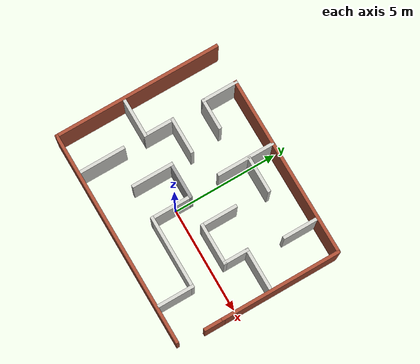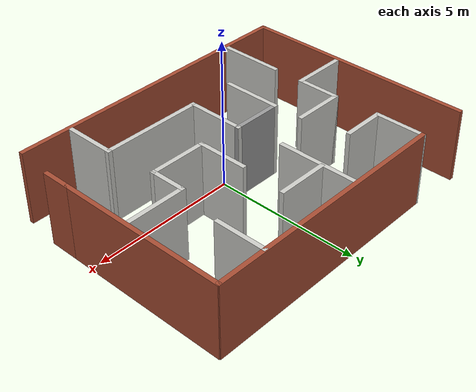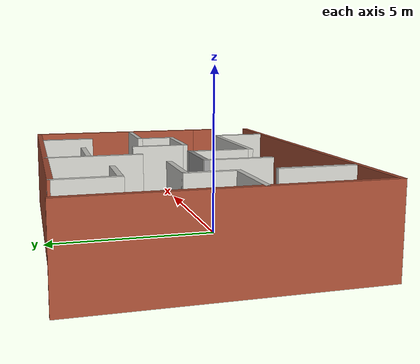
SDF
<?xml version='1.0'?>
<sdf version='1.7'>
  <model name='maze1'>
    <pose>0.125648 1.01609 0 0 -0 0</pose>
    <link name='Wall_10'>
      <collision name='Wall_10_Collision'>
        <geometry>
          <box>
            <size>8.60392 0.15 2.5</size>
          </box>
        </geometry>
        <pose>0 0 1.25 0 -0 0</pose>
      </collision>
      <visual name='Wall_10_Visual'>
        <pose>0 0 1.25 0 -0 0</pose>
        <geometry>
          <box>
            <size>8.60392 0.15 2.5</size>
          </box>
        </geometry>
        <material>
          <script>
            <uri>file://media/materials/scripts/gazebo.material</uri>
            <name>Gazebo/Bricks</name>
          </script>
          <ambient>1 1 1 1</ambient>
        </material>
        <meta>
          <layer>0</layer>
        </meta>
      </visual>
      <pose>0.88793 3.86419 0 0 -0 -3.13769</pose>
    </link>
    <link name='Wall_14'>
      <collision name='Wall_14_Collision'>
        <geometry>
          <box>
            <size>5.75 0.15 2.5</size>
          </box>
        </geometry>
        <pose>0 0 1.25 0 -0 0</pose>
      </collision>
      <visual name='Wall_14_Visual'>
        <pose>0 0 1.25 0 -0 0</pose>
        <geometry>
          <box>
            <size>5.75 0.15 2.5</size>
          </box>
        </geometry>
        <material>
          <script>
            <uri>file://media/materials/scripts/gazebo.material</uri>
            <name>Gazebo/Bricks</name>
          </script>
          <ambient>1 1 1 1</ambient>
        </material>
        <meta>
          <layer>0</layer>
        </meta>
      </visual>
      <pose>5.14103 1.05452 0 0 -0 -1.5708</pose>
    </link>
    <link name='Wall_16'>
      <collision name='Wall_16_Collision'>
        <geometry>
          <box>
            <size>1.75 0.15 2.5</size>
          </box>
        </geometry>
        <pose>0 0 1.25 0 -0 0</pose>
      </collision>
      <visual name='Wall_16_Visual'>
        <pose>0 0 1.25 0 -0 0</pose>
        <geometry>
          <box>
            <size>1.75 0.15 2.5</size>
          </box>
        </geometry>
        <material>
          <script>
            <uri>file://media/materials/scripts/gazebo.material</uri>
            <name>Gazebo/CeilingTiled</name>
          </script>
          <ambient>1 1 1 1</ambient>
        </material>
        <meta>
          <layer>0</layer>
        </meta>
      </visual>
      <pose>-3.339 3.04769 0 0 -0 -1.5708</pose>
    </link>
    <link name='Wall_17'>
      <collision name='Wall_17_Collision'>
        <geometry>
          <box>
            <size>1.5 0.15 2.5</size>
          </box>
        </geometry>
        <pose>0 0 1.25 0 -0 0</pose>
      </collision>
      <visual name='Wall_17_Visual'>
        <pose>0 0 1.25 0 -0 0</pose>
        <geometry>
          <box>
            <size>1.5 0.15 2.5</size>
          </box>
        </geometry>
        <material>
          <script>
            <uri>file://media/materials/scripts/gazebo.material</uri>
            <name>Gazebo/CeilingTiled</name>
          </script>
          <ambient>1 1 1 1</ambient>
        </material>
        <meta>
          <layer>0</layer>
        </meta>
      </visual>
      <pose>-2.664 2.24769 0 0 -0 0</pose>
    </link>
    <link name='Wall_19'>
      <collision name='Wall_19_Collision'>
        <geometry>
          <box>
            <size>2.25 0.15 2.5</size>
          </box>
        </geometry>
        <pose>0 0 1.25 0 -0 0</pose>
      </collision>
      <visual name='Wall_19_Visual'>
        <pose>0 0 1.25 0 -0 0</pose>
        <geometry>
          <box>
            <size>2.25 0.15 2.5</size>
          </box>
        </geometry>
        <material>
          <script>
            <uri>file://media/materials/scripts/gazebo.material</uri>
            <name>Gazebo/CeilingTiled</name>
          </script>
          <ambient>1 1 1 1</ambient>
        </material>
        <meta>
          <layer>0</layer>
        </meta>
      </visual>
      <pose>-3.27785 -2.80066 0 0 -0 1.5708</pose>
    </link>
    <link name='Wall_21'>
      <collision name='Wall_21_Collision'>
        <geometry>
          <box>
            <size>2 0.15 2.5</size>
          </box>
        </geometry>
        <pose>0 0 1.25 0 -0 0</pose>
      </collision>
      <visual name='Wall_21_Visual'>
        <pose>0 0 1.25 0 -0 0</pose>
        <geometry>
          <box>
            <size>2 0.15 2.5</size>
          </box>
        </geometry>
        <material>
          <script>
            <uri>file://media/materials/scripts/gazebo.material</uri>
            <name>Gazebo/CeilingTiled</name>
          </script>
          <ambient>1 1 1 1</ambient>
        </material>
        <meta>
          <layer>0</layer>
        </meta>
      </visual>
      <pose>-4.21089 -0.657958 0 0 -0 0</pose>
    </link>
    <link name='Wall_22'>
      <collision name='Wall_22_Collision'>
        <geometry>
          <box>
            <size>1.5 0.15 2.5</size>
          </box>
        </geometry>
        <pose>0 0 1.25 0 -0 0</pose>
      </collision>
      <visual name='Wall_22_Visual'>
        <pose>0 0 1.25 0 -0 0</pose>
        <geometry>
          <box>
            <size>1.5 0.15 2.5</size>
          </box>
        </geometry>
        <material>
          <script>
            <uri>file://media/materials/scripts/gazebo.material</uri>
            <name>Gazebo/CeilingTiled</name>
          </script>
          <ambient>1 1 1 1</ambient>
        </material>
        <meta>
          <layer>0</layer>
        </meta>
      </visual>
      <pose>-3.28589 0.017042 0 0 -0 1.5708</pose>
    </link>
    <link name='Wall_23'>
      <collision name='Wall_23_Collision'>
        <geometry>
          <box>
            <size>1.75 0.15 2.5</size>
          </box>
        </geometry>
        <pose>0 0 1.25 0 -0 0</pose>
      </collision>
      <visual name='Wall_23_Visual'>
        <pose>0 0 1.25 0 -0 0</pose>
        <geometry>
          <box>
            <size>1.75 0.15 2.5</size>
          </box>
        </geometry>
        <material>
          <script>
            <uri>file://media/materials/scripts/gazebo.material</uri>
            <name>Gazebo/CeilingTiled</name>
          </script>
          <ambient>1 1 1 1</ambient>
        </material>
        <meta>
          <layer>0</layer>
        </meta>
      </visual>
      <pose>-2.48589 0.692042 0 0 -0 0</pose>
    </link>
    <link name='Wall_25'>
      <collision name='Wall_25_Collision'>
        <geometry>
          <box>
            <size>1.75 0.15 2.5</size>
          </box>
        </geometry>
        <pose>0 0 1.25 0 -0 0</pose>
      </collision>
      <visual name='Wall_25_Visual'>
        <pose>0 0 1.25 0 -0 0</pose>
        <geometry>
          <box>
            <size>1.75 0.15 2.5</size>
          </box>
        </geometry>
        <material>
          <script>
            <uri>file://media/materials/scripts/gazebo.material</uri>
            <name>Gazebo/CeilingTiled</name>
          </script>
          <ambient>1 1 1 1</ambient>
        </material>
        <meta>
          <layer>0</layer>
        </meta>
      </visual>
      <pose>3.31692 -2.97215 0 0 -0 1.5708</pose>
    </link>
    <link name='Wall_26'>
      <collision name='Wall_26_Collision'>
        <geometry>
          <box>
            <size>3.5 0.15 2.5</size>
          </box>
        </geometry>
        <pose>0 0 1.25 0 -0 0</pose>
      </collision>
      <visual name='Wall_26_Visual'>
        <pose>0 0 1.25 0 -0 0</pose>
        <geometry>
          <box>
            <size>3.5 0.15 2.5</size>
          </box>
        </geometry>
        <material>
          <script>
            <uri>file://media/materials/scripts/gazebo.material</uri>
            <name>Gazebo/CeilingTiled</name>
          </script>
          <ambient>1 1 1 1</ambient>
        </material>
        <meta>
          <layer>0</layer>
        </meta>
      </visual>
      <pose>1.64192 -2.17215 0 0 -0 3.14159</pose>
    </link>
    <link name='Wall_27'>
      <collision name='Wall_27_Collision'>
        <geometry>
          <box>
            <size>2 0.15 2.5</size>
          </box>
        </geometry>
        <pose>0 0 1.25 0 -0 0</pose>
      </collision>
      <visual name='Wall_27_Visual'>
        <pose>0 0 1.25 0 -0 0</pose>
        <geometry>
          <box>
            <size>2 0.15 2.5</size>
          </box>
        </geometry>
        <material>
          <script>
            <uri>file://media/materials/scripts/gazebo.material</uri>
            <name>Gazebo/CeilingTiled</name>
          </script>
          <ambient>1 1 1 1</ambient>
        </material>
        <meta>
          <layer>0</layer>
        </meta>
      </visual>
      <pose>-0.033081 -1.24715 0 0 -0 1.5708</pose>
    </link>
    <link name='Wall_28'>
      <collision name='Wall_28_Collision'>
        <geometry>
          <box>
            <size>1.75 0.15 2.5</size>
          </box>
        </geometry>
        <pose>0 0 1.25 0 -0 0</pose>
      </collision>
      <visual name='Wall_28_Visual'>
        <pose>0 0 1.25 0 -0 0</pose>
        <geometry>
          <box>
            <size>1.75 0.15 2.5</size>
          </box>
        </geometry>
        <material>
          <script>
            <uri>file://media/materials/scripts/gazebo.material</uri>
            <name>Gazebo/Grey</name>
          </script>
          <ambient>1 1 1 1</ambient>
        </material>
        <meta>
          <layer>0</layer>
        </meta>
      </visual>
      <pose>-0.833081 -0.322153 0 0 -0 3.14159</pose>
    </link>
    <link name='Wall_29'>
      <collision name='Wall_29_Collision'>
        <geometry>
          <box>
            <size>2 0.15 2.5</size>
          </box>
        </geometry>
        <pose>0 0 1.25 0 -0 0</pose>
      </collision>
      <visual name='Wall_29_Visual'>
        <pose>0 0 1.25 0 -0 0</pose>
        <geometry>
          <box>
            <size>2 0.15 2.5</size>
          </box>
        </geometry>
        <material>
          <script>
            <uri>file://media/materials/scripts/gazebo.material</uri>
            <name>Gazebo/CeilingTiled</name>
          </script>
          <ambient>1 1 1 1</ambient>
        </material>
        <meta>
          <layer>0</layer>
        </meta>
      </visual>
      <pose>-1.63308 -1.24715 0 0 -0 -1.5708</pose>
    </link>
    <link name='Wall_31'>
      <collision name='Wall_31_Collision'>
        <geometry>
          <box>
            <size>1 0.15 2.5</size>
          </box>
        </geometry>
        <pose>0 0 1.25 0 -0 0</pose>
      </collision>
      <visual name='Wall_31_Visual'>
        <pose>0 0 1.25 0 -0 0</pose>
        <geometry>
          <box>
            <size>1 0.15 2.5</size>
          </box>
        </geometry>
        <material>
          <script>
            <uri>file://media/materials/scripts/gazebo.material</uri>
            <name>Gazebo/Bricks</name>
          </script>
          <ambient>1 1 1 1</ambient>
        </material>
        <meta>
          <layer>0</layer>
        </meta>
      </visual>
      <pose>5.14103 -2.17048 0 0 -0 -1.5708</pose>
    </link>
    <link name='Wall_33'>
      <collision name='Wall_33_Collision'>
        <geometry>
          <box>
            <size>2.75 0.15 2.5</size>
          </box>
        </geometry>
        <pose>0 0 1.25 0 -0 0</pose>
      </collision>
      <visual name='Wall_33_Visual'>
        <pose>0 0 1.25 0 -0 0</pose>
        <geometry>
          <box>
            <size>2.75 0.15 2.5</size>
          </box>
        </geometry>
        <material>
          <script>
            <uri>file://media/materials/scripts/gazebo.material</uri>
            <name>Gazebo/CeilingTiled</name>
          </script>
          <ambient>1 1 1 1</ambient>
        </material>
        <meta>
          <layer>0</layer>
        </meta>
      </visual>
      <pose>-0.24216 2.51706 0 0 -0 -1.5708</pose>
    </link>
    <link name='Wall_35'>
      <collision name='Wall_35_Collision'>
        <geometry>
          <box>
            <size>1.75 0.15 2.5</size>
          </box>
        </geometry>
        <pose>0 0 1.25 0 -0 0</pose>
      </collision>
      <visual name='Wall_35_Visual'>
        <pose>0 0 1.25 0 -0 0</pose>
        <geometry>
          <box>
            <size>1.75 0.15 2.5</size>
          </box>
        </geometry>
        <material>
          <script>
            <uri>file://media/materials/scripts/gazebo.material</uri>
            <name>Gazebo/CeilingTiled</name>
          </script>
          <ambient>1 1 1 1</ambient>
        </material>
        <meta>
          <layer>0</layer>
        </meta>
      </visual>
      <pose>0.610179 2.66559 0 0 -0 0</pose>
    </link>
    <link name='Wall_37'>
      <collision name='Wall_37_Collision'>
        <geometry>
          <box>
            <size>1.75 0.15 2.5</size>
          </box>
        </geometry>
        <pose>0 0 1.25 0 -0 0</pose>
      </collision>
      <visual name='Wall_37_Visual'>
        <pose>0 0 1.25 0 -0 0</pose>
        <geometry>
          <box>
            <size>1.75 0.15 2.5</size>
          </box>
        </geometry>
        <material>
          <script>
            <uri>file://media/materials/scripts/gazebo.material</uri>
            <name>Gazebo/CeilingTiled</name>
          </script>
          <ambient>1 1 1 1</ambient>
        </material>
        <meta>
          <layer>0</layer>
        </meta>
      </visual>
      <pose>3.47394 3.04323 0 0 -0 -1.5708</pose>
    </link>
    <link name='Wall_39'>
      <collision name='Wall_39_Collision'>
        <geometry>
          <box>
            <size>2 0.15 2.5</size>
          </box>
        </geometry>
        <pose>0 0 1.25 0 -0 0</pose>
      </collision>
      <visual name='Wall_39_Visual'>
        <pose>0 0 1.25 0 -0 0</pose>
        <geometry>
          <box>
            <size>2 0.15 2.5</size>
          </box>
        </geometry>
        <material>
          <script>
            <uri>file://media/materials/scripts/gazebo.material</uri>
            <name>Gazebo/CeilingTiled</name>
          </script>
          <ambient>1 1 1 1</ambient>
        </material>
        <meta>
          <layer>0</layer>
        </meta>
      </visual>
      <pose>4.06678 0.598188 0 0 -0 3.14159</pose>
    </link>
    <link name='Wall_40'>
      <collision name='Wall_40_Collision'>
        <geometry>
          <box>
            <size>1.25 0.15 2.5</size>
          </box>
        </geometry>
        <pose>0 0 1.25 0 -0 0</pose>
      </collision>
      <visual name='Wall_40_Visual'>
        <pose>0 0 1.25 0 -0 0</pose>
        <geometry>
          <box>
            <size>1.25 0.15 2.5</size>
          </box>
        </geometry>
        <material>
          <script>
            <uri>file://media/materials/scripts/gazebo.material</uri>
            <name>Gazebo/CeilingTiled</name>
          </script>
          <ambient>1 1 1 1</ambient>
        </material>
        <meta>
          <layer>0</layer>
        </meta>
      </visual>
      <pose>3.14178 0.048188 0 0 -0 -1.5708</pose>
    </link>
    <link name='Wall_41'>
      <collision name='Wall_41_Collision'>
        <geometry>
          <box>
            <size>2 0.15 2.5</size>
          </box>
        </geometry>
        <pose>0 0 1.25 0 -0 0</pose>
      </collision>
      <visual name='Wall_41_Visual'>
        <pose>0 0 1.25 0 -0 0</pose>
        <geometry>
          <box>
            <size>2 0.15 2.5</size>
          </box>
        </geometry>
        <material>
          <script>
            <uri>file://media/materials/scripts/gazebo.material</uri>
            <name>Gazebo/CeilingTiled</name>
          </script>
          <ambient>1 1 1 1</ambient>
        </material>
        <meta>
          <layer>0</layer>
        </meta>
      </visual>
      <pose>2.21678 -0.501812 0 0 -0 3.14159</pose>
    </link>
    <link name='Wall_42'>
      <collision name='Wall_42_Collision'>
        <geometry>
          <box>
            <size>1.75 0.15 2.5</size>
          </box>
        </geometry>
        <pose>0 0 1.25 0 -0 0</pose>
      </collision>
      <visual name='Wall_42_Visual'>
        <pose>0 0 1.25 0 -0 0</pose>
        <geometry>
          <box>
            <size>1.75 0.15 2.5</size>
          </box>
        </geometry>
        <material>
          <script>
            <uri>file://media/materials/scripts/gazebo.material</uri>
            <name>Gazebo/CeilingTiled</name>
          </script>
          <ambient>1 1 1 1</ambient>
        </material>
        <meta>
          <layer>0</layer>
        </meta>
      </visual>
      <pose>1.29178 0.298188 0 0 -0 1.5708</pose>
    </link>
    <link name='Wall_6'>
      <collision name='Wall_6_Collision'>
        <geometry>
          <box>
            <size>8 0.15 2.5</size>
          </box>
        </geometry>
        <pose>0 0 1.25 0 -0 0</pose>
      </collision>
      <visual name='Wall_6_Visual'>
        <pose>0 0 1.25 0 -0 0</pose>
        <geometry>
          <box>
            <size>8 0.15 2.5</size>
          </box>
        </geometry>
        <material>
          <script>
            <uri>file://media/materials/scripts/gazebo.material</uri>
            <name>Gazebo/Bricks</name>
          </script>
          <ambient>1 1 1 1</ambient>
        </material>
        <meta>
          <layer>0</layer>
        </meta>
      </visual>
      <pose>-5.14103 0.002517 0 0 -0 1.5708</pose>
    </link>
    <link name='Wall_8'>
      <collision name='Wall_8_Collision'>
        <geometry>
          <box>
            <size>10.2728 0.15 2.5</size>
          </box>
        </geometry>
        <pose>0 0 1.25 0 -0 0</pose>
      </collision>
      <visual name='Wall_8_Visual'>
        <pose>0 0 1.25 0 -0 0</pose>
        <geometry>
          <box>
            <size>10.2728 0.15 2.5</size>
          </box>
        </geometry>
        <material>
          <script>
            <uri>file://media/materials/scripts/gazebo.material</uri>
            <name>Gazebo/Bricks</name>
          </script>
          <ambient>1 1 1 1</ambient>
        </material>
        <meta>
          <layer>0</layer>
        </meta>
      </visual>
      <pose>-0.075855 -3.91078 0 0 -0 -3.13833</pose>
    </link>
    <static>1</static>
  </model>
</sdf>
